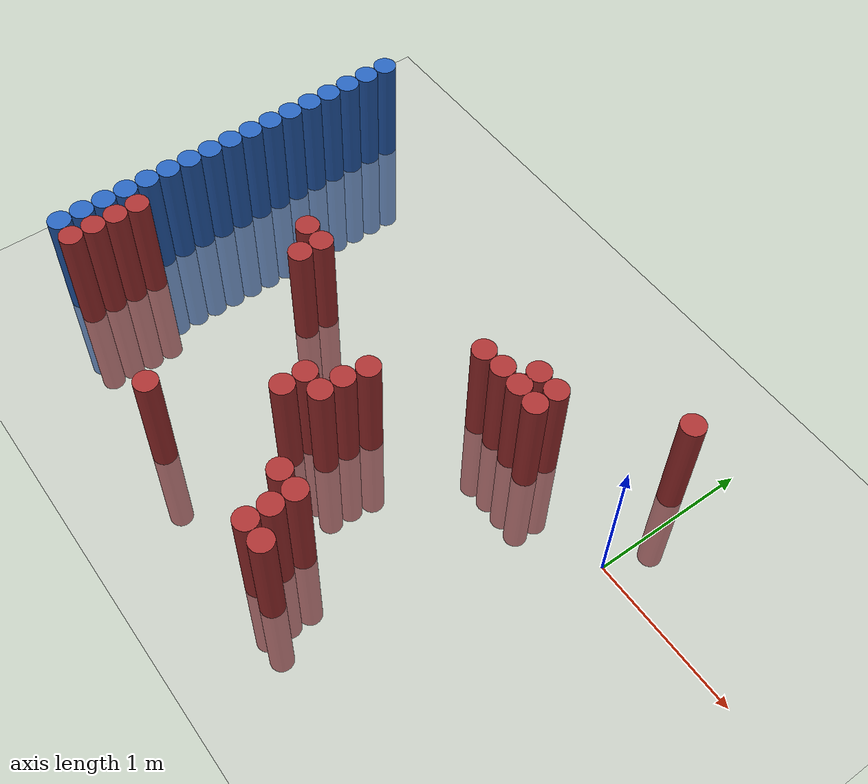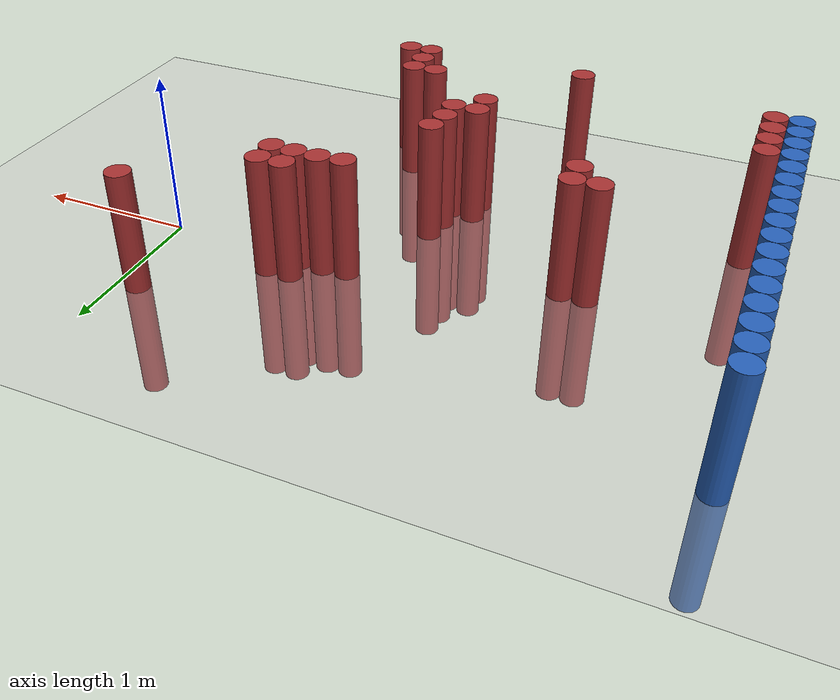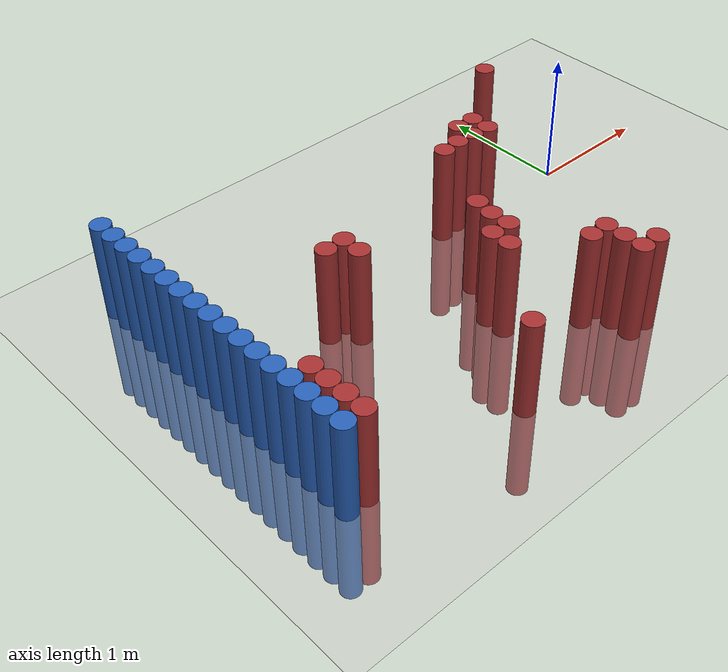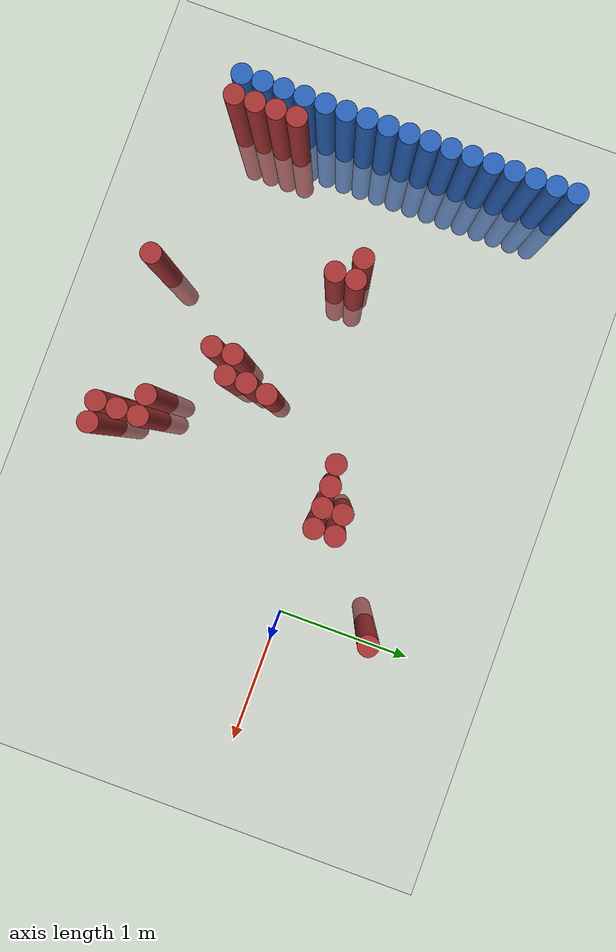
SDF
<sdf version="1.7">
 <world name="default">
  <model name="ground_plane">
   <static>1</static>
   <link name="link">
    <collision name="collision">
     <geometry><plane><normal>0 0 1</normal><size>100 100</size></plane></geometry>
     <surface><friction><ode><mu>100</mu><mu2>50</mu2></ode></friction></surface>
    </collision>
    <visual name="visual">
     <cast_shadows>0</cast_shadows>
     <geometry><plane><normal>0 0 1</normal><size>100 100</size></plane></geometry>
     <material>
      <script><uri>file://media/materials/scripts/gazebo.material</uri><name>Gazebo/Grey</name></script>
     </material>
    </visual>
   </link>
  </model>
  <model name="unit_cylinder_95">
   <static>1</static>
   <pose>-3.425 -1.475 0 0 -0 0</pose>
   <link name="link">
    <inertial>
     <mass>1</mass>
     <inertia><ixx>0.145833</ixx><ixy>0</ixy><ixz>0</ixz><iyy>0.145833</iyy><iyz>0</iyz><izz>0.125</izz></inertia>
    </inertial>
    <collision name="collision">
     <geometry><cylinder><radius>0.075</radius><length>1.5</length></cylinder></geometry>
    </collision>
    <visual name="visual">
     <geometry><cylinder><radius>0.075</radius><length>1.5</length></cylinder></geometry>
     <material><ambient>0.152 0.379 0.72 1</ambient><diffuse>0.152 0.379 0.72 1</diffuse></material>
     <material>
      <script><name>Gazebo/Grey</name><uri>file://media/materials/scripts/gazebo.material</uri></script>
     </material>
    </visual>
   </link>
  </model>
  <model name="unit_cylinder_97">
   <static>1</static>
   <pose>-3.425 -1.325 0 0 -0 0</pose>
   <link name="link">
    <inertial>
     <mass>1</mass>
     <inertia><ixx>0.145833</ixx><ixy>0</ixy><ixz>0</ixz><iyy>0.145833</iyy><iyz>0</iyz><izz>0.125</izz></inertia>
    </inertial>
    <collision name="collision">
     <geometry><cylinder><radius>0.075</radius><length>1.5</length></cylinder></geometry>
    </collision>
    <visual name="visual">
     <geometry><cylinder><radius>0.075</radius><length>1.5</length></cylinder></geometry>
     <material><ambient>0.152 0.379 0.72 1</ambient><diffuse>0.152 0.379 0.72 1</diffuse></material>
     <material>
      <script><name>Gazebo/Grey</name><uri>file://media/materials/scripts/gazebo.material</uri></script>
     </material>
    </visual>
   </link>
  </model>
  <model name="unit_cylinder_99">
   <static>1</static>
   <pose>-3.425 -1.175 0 0 -0 0</pose>
   <link name="link">
    <inertial>
     <mass>1</mass>
     <inertia><ixx>0.145833</ixx><ixy>0</ixy><ixz>0</ixz><iyy>0.145833</iyy><iyz>0</iyz><izz>0.125</izz></inertia>
    </inertial>
    <collision name="collision">
     <geometry><cylinder><radius>0.075</radius><length>1.5</length></cylinder></geometry>
    </collision>
    <visual name="visual">
     <geometry><cylinder><radius>0.075</radius><length>1.5</length></cylinder></geometry>
     <material><ambient>0.152 0.379 0.72 1</ambient><diffuse>0.152 0.379 0.72 1</diffuse></material>
     <material>
      <script><name>Gazebo/Grey</name><uri>file://media/materials/scripts/gazebo.material</uri></script>
     </material>
    </visual>
   </link>
  </model>
  <model name="unit_cylinder_101">
   <static>1</static>
   <pose>-3.425 -1.025 0 0 -0 0</pose>
   <link name="link">
    <inertial>
     <mass>1</mass>
     <inertia><ixx>0.145833</ixx><ixy>0</ixy><ixz>0</ixz><iyy>0.145833</iyy><iyz>0</iyz><izz>0.125</izz></inertia>
    </inertial>
    <collision name="collision">
     <geometry><cylinder><radius>0.075</radius><length>1.5</length></cylinder></geometry>
    </collision>
    <visual name="visual">
     <geometry><cylinder><radius>0.075</radius><length>1.5</length></cylinder></geometry>
     <material><ambient>0.152 0.379 0.72 1</ambient><diffuse>0.152 0.379 0.72 1</diffuse></material>
     <material>
      <script><name>Gazebo/Grey</name><uri>file://media/materials/scripts/gazebo.material</uri></script>
     </material>
    </visual>
   </link>
  </model>
  <model name="unit_cylinder_103">
   <static>1</static>
   <pose>-3.425 -0.875 0 0 -0 0</pose>
   <link name="link">
    <inertial>
     <mass>1</mass>
     <inertia><ixx>0.145833</ixx><ixy>0</ixy><ixz>0</ixz><iyy>0.145833</iyy><iyz>0</iyz><izz>0.125</izz></inertia>
    </inertial>
    <collision name="collision">
     <geometry><cylinder><radius>0.075</radius><length>1.5</length></cylinder></geometry>
    </collision>
    <visual name="visual">
     <geometry><cylinder><radius>0.075</radius><length>1.5</length></cylinder></geometry>
     <material><ambient>0.152 0.379 0.72 1</ambient><diffuse>0.152 0.379 0.72 1</diffuse></material>
     <material>
      <script><name>Gazebo/Grey</name><uri>file://media/materials/scripts/gazebo.material</uri></script>
     </material>
    </visual>
   </link>
  </model>
  <model name="unit_cylinder_105">
   <static>1</static>
   <pose>-3.425 -0.725 0 0 -0 0</pose>
   <link name="link">
    <inertial>
     <mass>1</mass>
     <inertia><ixx>0.145833</ixx><ixy>0</ixy><ixz>0</ixz><iyy>0.145833</iyy><iyz>0</iyz><izz>0.125</izz></inertia>
    </inertial>
    <collision name="collision">
     <geometry><cylinder><radius>0.075</radius><length>1.5</length></cylinder></geometry>
    </collision>
    <visual name="visual">
     <geometry><cylinder><radius>0.075</radius><length>1.5</length></cylinder></geometry>
     <material><ambient>0.152 0.379 0.72 1</ambient><diffuse>0.152 0.379 0.72 1</diffuse></material>
     <material>
      <script><name>Gazebo/Grey</name><uri>file://media/materials/scripts/gazebo.material</uri></script>
     </material>
    </visual>
   </link>
  </model>
  <model name="unit_cylinder_107">
   <static>1</static>
   <pose>-3.425 -0.575 0 0 -0 0</pose>
   <link name="link">
    <inertial>
     <mass>1</mass>
     <inertia><ixx>0.145833</ixx><ixy>0</ixy><ixz>0</ixz><iyy>0.145833</iyy><iyz>0</iyz><izz>0.125</izz></inertia>
    </inertial>
    <collision name="collision">
     <geometry><cylinder><radius>0.075</radius><length>1.5</length></cylinder></geometry>
    </collision>
    <visual name="visual">
     <geometry><cylinder><radius>0.075</radius><length>1.5</length></cylinder></geometry>
     <material><ambient>0.152 0.379 0.72 1</ambient><diffuse>0.152 0.379 0.72 1</diffuse></material>
     <material>
      <script><name>Gazebo/Grey</name><uri>file://media/materials/scripts/gazebo.material</uri></script>
     </material>
    </visual>
   </link>
  </model>
  <model name="unit_cylinder_109">
   <static>1</static>
   <pose>-3.425 -0.425 0 0 -0 0</pose>
   <link name="link">
    <inertial>
     <mass>1</mass>
     <inertia><ixx>0.145833</ixx><ixy>0</ixy><ixz>0</ixz><iyy>0.145833</iyy><iyz>0</iyz><izz>0.125</izz></inertia>
    </inertial>
    <collision name="collision">
     <geometry><cylinder><radius>0.075</radius><length>1.5</length></cylinder></geometry>
    </collision>
    <visual name="visual">
     <geometry><cylinder><radius>0.075</radius><length>1.5</length></cylinder></geometry>
     <material><ambient>0.152 0.379 0.72 1</ambient><diffuse>0.152 0.379 0.72 1</diffuse></material>
     <material>
      <script><name>Gazebo/Grey</name><uri>file://media/materials/scripts/gazebo.material</uri></script>
     </material>
    </visual>
   </link>
  </model>
  <model name="unit_cylinder_111">
   <static>1</static>
   <pose>-3.425 -0.275 0 0 -0 0</pose>
   <link name="link">
    <inertial>
     <mass>1</mass>
     <inertia><ixx>0.145833</ixx><ixy>0</ixy><ixz>0</ixz><iyy>0.145833</iyy><iyz>0</iyz><izz>0.125</izz></inertia>
    </inertial>
    <collision name="collision">
     <geometry><cylinder><radius>0.075</radius><length>1.5</length></cylinder></geometry>
    </collision>
    <visual name="visual">
     <geometry><cylinder><radius>0.075</radius><length>1.5</length></cylinder></geometry>
     <material><ambient>0.152 0.379 0.72 1</ambient><diffuse>0.152 0.379 0.72 1</diffuse></material>
     <material>
      <script><name>Gazebo/Grey</name><uri>file://media/materials/scripts/gazebo.material</uri></script>
     </material>
    </visual>
   </link>
  </model>
  <model name="unit_cylinder_113">
   <static>1</static>
   <pose>-3.425 -0.125 0 0 -0 0</pose>
   <link name="link">
    <inertial>
     <mass>1</mass>
     <inertia><ixx>0.145833</ixx><ixy>0</ixy><ixz>0</ixz><iyy>0.145833</iyy><iyz>0</iyz><izz>0.125</izz></inertia>
    </inertial>
    <collision name="collision">
     <geometry><cylinder><radius>0.075</radius><length>1.5</length></cylinder></geometry>
    </collision>
    <visual name="visual">
     <geometry><cylinder><radius>0.075</radius><length>1.5</length></cylinder></geometry>
     <material><ambient>0.152 0.379 0.72 1</ambient><diffuse>0.152 0.379 0.72 1</diffuse></material>
     <material>
      <script><name>Gazebo/Grey</name><uri>file://media/materials/scripts/gazebo.material</uri></script>
     </material>
    </visual>
   </link>
  </model>
  <model name="unit_cylinder_115">
   <static>1</static>
   <pose>-3.425 0.025 0 0 -0 0</pose>
   <link name="link">
    <inertial>
     <mass>1</mass>
     <inertia><ixx>0.145833</ixx><ixy>0</ixy><ixz>0</ixz><iyy>0.145833</iyy><iyz>0</iyz><izz>0.125</izz></inertia>
    </inertial>
    <collision name="collision">
     <geometry><cylinder><radius>0.075</radius><length>1.5</length></cylinder></geometry>
    </collision>
    <visual name="visual">
     <geometry><cylinder><radius>0.075</radius><length>1.5</length></cylinder></geometry>
     <material><ambient>0.152 0.379 0.72 1</ambient><diffuse>0.152 0.379 0.72 1</diffuse></material>
     <material>
      <script><name>Gazebo/Grey</name><uri>file://media/materials/scripts/gazebo.material</uri></script>
     </material>
    </visual>
   </link>
  </model>
  <model name="unit_cylinder_117">
   <static>1</static>
   <pose>-3.425 0.175 0 0 -0 0</pose>
   <link name="link">
    <inertial>
     <mass>1</mass>
     <inertia><ixx>0.145833</ixx><ixy>0</ixy><ixz>0</ixz><iyy>0.145833</iyy><iyz>0</iyz><izz>0.125</izz></inertia>
    </inertial>
    <collision name="collision">
     <geometry><cylinder><radius>0.075</radius><length>1.5</length></cylinder></geometry>
    </collision>
    <visual name="visual">
     <geometry><cylinder><radius>0.075</radius><length>1.5</length></cylinder></geometry>
     <material><ambient>0.152 0.379 0.72 1</ambient><diffuse>0.152 0.379 0.72 1</diffuse></material>
     <material>
      <script><name>Gazebo/Grey</name><uri>file://media/materials/scripts/gazebo.material</uri></script>
     </material>
    </visual>
   </link>
  </model>
  <model name="unit_cylinder_119">
   <static>1</static>
   <pose>-3.425 0.325 0 0 -0 0</pose>
   <link name="link">
    <inertial>
     <mass>1</mass>
     <inertia><ixx>0.145833</ixx><ixy>0</ixy><ixz>0</ixz><iyy>0.145833</iyy><iyz>0</iyz><izz>0.125</izz></inertia>
    </inertial>
    <collision name="collision">
     <geometry><cylinder><radius>0.075</radius><length>1.5</length></cylinder></geometry>
    </collision>
    <visual name="visual">
     <geometry><cylinder><radius>0.075</radius><length>1.5</length></cylinder></geometry>
     <material><ambient>0.152 0.379 0.72 1</ambient><diffuse>0.152 0.379 0.72 1</diffuse></material>
     <material>
      <script><name>Gazebo/Grey</name><uri>file://media/materials/scripts/gazebo.material</uri></script>
     </material>
    </visual>
   </link>
  </model>
  <model name="unit_cylinder_121">
   <static>1</static>
   <pose>-3.425 0.475 0 0 -0 0</pose>
   <link name="link">
    <inertial>
     <mass>1</mass>
     <inertia><ixx>0.145833</ixx><ixy>0</ixy><ixz>0</ixz><iyy>0.145833</iyy><iyz>0</iyz><izz>0.125</izz></inertia>
    </inertial>
    <collision name="collision">
     <geometry><cylinder><radius>0.075</radius><length>1.5</length></cylinder></geometry>
    </collision>
    <visual name="visual">
     <geometry><cylinder><radius>0.075</radius><length>1.5</length></cylinder></geometry>
     <material><ambient>0.152 0.379 0.72 1</ambient><diffuse>0.152 0.379 0.72 1</diffuse></material>
     <material>
      <script><name>Gazebo/Grey</name><uri>file://media/materials/scripts/gazebo.material</uri></script>
     </material>
    </visual>
   </link>
  </model>
  <model name="unit_cylinder_123">
   <static>1</static>
   <pose>-3.425 0.625 0 0 -0 0</pose>
   <link name="link">
    <inertial>
     <mass>1</mass>
     <inertia><ixx>0.145833</ixx><ixy>0</ixy><ixz>0</ixz><iyy>0.145833</iyy><iyz>0</iyz><izz>0.125</izz></inertia>
    </inertial>
    <collision name="collision">
     <geometry><cylinder><radius>0.075</radius><length>1.5</length></cylinder></geometry>
    </collision>
    <visual name="visual">
     <geometry><cylinder><radius>0.075</radius><length>1.5</length></cylinder></geometry>
     <material><ambient>0.152 0.379 0.72 1</ambient><diffuse>0.152 0.379 0.72 1</diffuse></material>
     <material>
      <script><name>Gazebo/Grey</name><uri>file://media/materials/scripts/gazebo.material</uri></script>
     </material>
    </visual>
   </link>
  </model>
  <model name="unit_cylinder_125">
   <static>1</static>
   <pose>-3.425 0.775 0 0 -0 0</pose>
   <link name="link">
    <inertial>
     <mass>1</mass>
     <inertia><ixx>0.145833</ixx><ixy>0</ixy><ixz>0</ixz><iyy>0.145833</iyy><iyz>0</iyz><izz>0.125</izz></inertia>
    </inertial>
    <collision name="collision">
     <geometry><cylinder><radius>0.075</radius><length>1.5</length></cylinder></geometry>
    </collision>
    <visual name="visual">
     <geometry><cylinder><radius>0.075</radius><length>1.5</length></cylinder></geometry>
     <material><ambient>0.152 0.379 0.72 1</ambient><diffuse>0.152 0.379 0.72 1</diffuse></material>
     <material>
      <script><name>Gazebo/Grey</name><uri>file://media/materials/scripts/gazebo.material</uri></script>
     </material>
    </visual>
   </link>
  </model>
  <model name="unit_cylinder_127">
   <static>1</static>
   <pose>-3.425 0.925 0 0 -0 0</pose>
   <link name="link">
    <inertial>
     <mass>1</mass>
     <inertia><ixx>0.145833</ixx><ixy>0</ixy><ixz>0</ixz><iyy>0.145833</iyy><iyz>0</iyz><izz>0.125</izz></inertia>
    </inertial>
    <collision name="collision">
     <geometry><cylinder><radius>0.075</radius><length>1.5</length></cylinder></geometry>
    </collision>
    <visual name="visual">
     <geometry><cylinder><radius>0.075</radius><length>1.5</length></cylinder></geometry>
     <material><ambient>0.152 0.379 0.72 1</ambient><diffuse>0.152 0.379 0.72 1</diffuse></material>
     <material>
      <script><name>Gazebo/Grey</name><uri>file://media/materials/scripts/gazebo.material</uri></script>
     </material>
    </visual>
   </link>
  </model>
  <model name="unit_cylinder_211">
   <static>1</static>
   <pose>-3.425 -1.475 0 0 -0 0</pose>
   <link name="link">
    <inertial>
     <mass>1</mass>
     <inertia><ixx>0.145833</ixx><ixy>0</ixy><ixz>0</ixz><iyy>0.145833</iyy><iyz>0</iyz><izz>0.125</izz></inertia>
    </inertial>
    <collision name="collision">
     <geometry><cylinder><radius>0.075</radius><length>1.5</length></cylinder></geometry>
    </collision>
    <visual name="visual">
     <geometry><cylinder><radius>0.075</radius><length>1.5</length></cylinder></geometry>
     <material><ambient>0.152 0.379 0.72 1</ambient><diffuse>0.152 0.379 0.72 1</diffuse></material>
     <material>
      <script><name>Gazebo/Grey</name><uri>file://media/materials/scripts/gazebo.material</uri></script>
     </material>
    </visual>
   </link>
  </model>
  <model name="unit_cylinder_212">
   <static>1</static>
   <pose>-3.425 -1.325 0 0 -0 0</pose>
   <link name="link">
    <inertial>
     <mass>1</mass>
     <inertia><ixx>0.145833</ixx><ixy>0</ixy><ixz>0</ixz><iyy>0.145833</iyy><iyz>0</iyz><izz>0.125</izz></inertia>
    </inertial>
    <collision name="collision">
     <geometry><cylinder><radius>0.075</radius><length>1.5</length></cylinder></geometry>
    </collision>
    <visual name="visual">
     <geometry><cylinder><radius>0.075</radius><length>1.5</length></cylinder></geometry>
     <material><ambient>0.152 0.379 0.72 1</ambient><diffuse>0.152 0.379 0.72 1</diffuse></material>
     <material>
      <script><name>Gazebo/Grey</name><uri>file://media/materials/scripts/gazebo.material</uri></script>
     </material>
    </visual>
   </link>
  </model>
  <model name="unit_cylinder_213">
   <static>1</static>
   <pose>-3.425 -1.175 0 0 -0 0</pose>
   <link name="link">
    <inertial>
     <mass>1</mass>
     <inertia><ixx>0.145833</ixx><ixy>0</ixy><ixz>0</ixz><iyy>0.145833</iyy><iyz>0</iyz><izz>0.125</izz></inertia>
    </inertial>
    <collision name="collision">
     <geometry><cylinder><radius>0.075</radius><length>1.5</length></cylinder></geometry>
    </collision>
    <visual name="visual">
     <geometry><cylinder><radius>0.075</radius><length>1.5</length></cylinder></geometry>
     <material><ambient>0.152 0.379 0.72 1</ambient><diffuse>0.152 0.379 0.72 1</diffuse></material>
     <material>
      <script><name>Gazebo/Grey</name><uri>file://media/materials/scripts/gazebo.material</uri></script>
     </material>
    </visual>
   </link>
  </model>
  <model name="unit_cylinder_214">
   <static>1</static>
   <pose>-3.425 -1.025 0 0 -0 0</pose>
   <link name="link">
    <inertial>
     <mass>1</mass>
     <inertia><ixx>0.145833</ixx><ixy>0</ixy><ixz>0</ixz><iyy>0.145833</iyy><iyz>0</iyz><izz>0.125</izz></inertia>
    </inertial>
    <collision name="collision">
     <geometry><cylinder><radius>0.075</radius><length>1.5</length></cylinder></geometry>
    </collision>
    <visual name="visual">
     <geometry><cylinder><radius>0.075</radius><length>1.5</length></cylinder></geometry>
     <material><ambient>0.152 0.379 0.72 1</ambient><diffuse>0.152 0.379 0.72 1</diffuse></material>
     <material>
      <script><name>Gazebo/Grey</name><uri>file://media/materials/scripts/gazebo.material</uri></script>
     </material>
    </visual>
   </link>
  </model>
  <model name="unit_cylinder_215">
   <static>1</static>
   <pose>-3.425 -0.875 0 0 -0 0</pose>
   <link name="link">
    <inertial>
     <mass>1</mass>
     <inertia><ixx>0.145833</ixx><ixy>0</ixy><ixz>0</ixz><iyy>0.145833</iyy><iyz>0</iyz><izz>0.125</izz></inertia>
    </inertial>
    <collision name="collision">
     <geometry><cylinder><radius>0.075</radius><length>1.5</length></cylinder></geometry>
    </collision>
    <visual name="visual">
     <geometry><cylinder><radius>0.075</radius><length>1.5</length></cylinder></geometry>
     <material><ambient>0.152 0.379 0.72 1</ambient><diffuse>0.152 0.379 0.72 1</diffuse></material>
     <material>
      <script><name>Gazebo/Grey</name><uri>file://media/materials/scripts/gazebo.material</uri></script>
     </material>
    </visual>
   </link>
  </model>
  <model name="unit_cylinder_216">
   <static>1</static>
   <pose>-3.425 -0.725 0 0 -0 0</pose>
   <link name="link">
    <inertial>
     <mass>1</mass>
     <inertia><ixx>0.145833</ixx><ixy>0</ixy><ixz>0</ixz><iyy>0.145833</iyy><iyz>0</iyz><izz>0.125</izz></inertia>
    </inertial>
    <collision name="collision">
     <geometry><cylinder><radius>0.075</radius><length>1.5</length></cylinder></geometry>
    </collision>
    <visual name="visual">
     <geometry><cylinder><radius>0.075</radius><length>1.5</length></cylinder></geometry>
     <material><ambient>0.152 0.379 0.72 1</ambient><diffuse>0.152 0.379 0.72 1</diffuse></material>
     <material>
      <script><name>Gazebo/Grey</name><uri>file://media/materials/scripts/gazebo.material</uri></script>
     </material>
    </visual>
   </link>
  </model>
  <model name="unit_cylinder_217">
   <static>1</static>
   <pose>-3.425 -0.575 0 0 -0 0</pose>
   <link name="link">
    <inertial>
     <mass>1</mass>
     <inertia><ixx>0.145833</ixx><ixy>0</ixy><ixz>0</ixz><iyy>0.145833</iyy><iyz>0</iyz><izz>0.125</izz></inertia>
    </inertial>
    <collision name="collision">
     <geometry><cylinder><radius>0.075</radius><length>1.5</length></cylinder></geometry>
    </collision>
    <visual name="visual">
     <geometry><cylinder><radius>0.075</radius><length>1.5</length></cylinder></geometry>
     <material><ambient>0.152 0.379 0.72 1</ambient><diffuse>0.152 0.379 0.72 1</diffuse></material>
     <material>
      <script><name>Gazebo/Grey</name><uri>file://media/materials/scripts/gazebo.material</uri></script>
     </material>
    </visual>
   </link>
  </model>
  <model name="unit_cylinder_218">
   <static>1</static>
   <pose>-3.425 -0.425 0 0 -0 0</pose>
   <link name="link">
    <inertial>
     <mass>1</mass>
     <inertia><ixx>0.145833</ixx><ixy>0</ixy><ixz>0</ixz><iyy>0.145833</iyy><iyz>0</iyz><izz>0.125</izz></inertia>
    </inertial>
    <collision name="collision">
     <geometry><cylinder><radius>0.075</radius><length>1.5</length></cylinder></geometry>
    </collision>
    <visual name="visual">
     <geometry><cylinder><radius>0.075</radius><length>1.5</length></cylinder></geometry>
     <material><ambient>0.152 0.379 0.72 1</ambient><diffuse>0.152 0.379 0.72 1</diffuse></material>
     <material>
      <script><name>Gazebo/Grey</name><uri>file://media/materials/scripts/gazebo.material</uri></script>
     </material>
    </visual>
   </link>
  </model>
  <model name="unit_cylinder_219">
   <static>1</static>
   <pose>-3.425 -0.275 0 0 -0 0</pose>
   <link name="link">
    <inertial>
     <mass>1</mass>
     <inertia><ixx>0.145833</ixx><ixy>0</ixy><ixz>0</ixz><iyy>0.145833</iyy><iyz>0</iyz><izz>0.125</izz></inertia>
    </inertial>
    <collision name="collision">
     <geometry><cylinder><radius>0.075</radius><length>1.5</length></cylinder></geometry>
    </collision>
    <visual name="visual">
     <geometry><cylinder><radius>0.075</radius><length>1.5</length></cylinder></geometry>
     <material><ambient>0.152 0.379 0.72 1</ambient><diffuse>0.152 0.379 0.72 1</diffuse></material>
     <material>
      <script><name>Gazebo/Grey</name><uri>file://media/materials/scripts/gazebo.material</uri></script>
     </material>
    </visual>
   </link>
  </model>
  <model name="unit_cylinder_220">
   <static>1</static>
   <pose>-3.425 -0.125 0 0 -0 0</pose>
   <link name="link">
    <inertial>
     <mass>1</mass>
     <inertia><ixx>0.145833</ixx><ixy>0</ixy><ixz>0</ixz><iyy>0.145833</iyy><iyz>0</iyz><izz>0.125</izz></inertia>
    </inertial>
    <collision name="collision">
     <geometry><cylinder><radius>0.075</radius><length>1.5</length></cylinder></geometry>
    </collision>
    <visual name="visual">
     <geometry><cylinder><radius>0.075</radius><length>1.5</length></cylinder></geometry>
     <material><ambient>0.152 0.379 0.72 1</ambient><diffuse>0.152 0.379 0.72 1</diffuse></material>
     <material>
      <script><name>Gazebo/Grey</name><uri>file://media/materials/scripts/gazebo.material</uri></script>
     </material>
    </visual>
   </link>
  </model>
  <model name="unit_cylinder_221">
   <static>1</static>
   <pose>-3.425 0.025 0 0 -0 0</pose>
   <link name="link">
    <inertial>
     <mass>1</mass>
     <inertia><ixx>0.145833</ixx><ixy>0</ixy><ixz>0</ixz><iyy>0.145833</iyy><iyz>0</iyz><izz>0.125</izz></inertia>
    </inertial>
    <collision name="collision">
     <geometry><cylinder><radius>0.075</radius><length>1.5</length></cylinder></geometry>
    </collision>
    <visual name="visual">
     <geometry><cylinder><radius>0.075</radius><length>1.5</length></cylinder></geometry>
     <material><ambient>0.152 0.379 0.72 1</ambient><diffuse>0.152 0.379 0.72 1</diffuse></material>
     <material>
      <script><name>Gazebo/Grey</name><uri>file://media/materials/scripts/gazebo.material</uri></script>
     </material>
    </visual>
   </link>
  </model>
  <model name="unit_cylinder_222">
   <static>1</static>
   <pose>-3.425 0.175 0 0 -0 0</pose>
   <link name="link">
    <inertial>
     <mass>1</mass>
     <inertia><ixx>0.145833</ixx><ixy>0</ixy><ixz>0</ixz><iyy>0.145833</iyy><iyz>0</iyz><izz>0.125</izz></inertia>
    </inertial>
    <collision name="collision">
     <geometry><cylinder><radius>0.075</radius><length>1.5</length></cylinder></geometry>
    </collision>
    <visual name="visual">
     <geometry><cylinder><radius>0.075</radius><length>1.5</length></cylinder></geometry>
     <material><ambient>0.152 0.379 0.72 1</ambient><diffuse>0.152 0.379 0.72 1</diffuse></material>
     <material>
      <script><name>Gazebo/Grey</name><uri>file://media/materials/scripts/gazebo.material</uri></script>
     </material>
    </visual>
   </link>
  </model>
  <model name="unit_cylinder_223">
   <static>1</static>
   <pose>-3.425 0.325 0 0 -0 0</pose>
   <link name="link">
    <inertial>
     <mass>1</mass>
     <inertia><ixx>0.145833</ixx><ixy>0</ixy><ixz>0</ixz><iyy>0.145833</iyy><iyz>0</iyz><izz>0.125</izz></inertia>
    </inertial>
    <collision name="collision">
     <geometry><cylinder><radius>0.075</radius><length>1.5</length></cylinder></geometry>
    </collision>
    <visual name="visual">
     <geometry><cylinder><radius>0.075</radius><length>1.5</length></cylinder></geometry>
     <material><ambient>0.152 0.379 0.72 1</ambient><diffuse>0.152 0.379 0.72 1</diffuse></material>
     <material>
      <script><name>Gazebo/Grey</name><uri>file://media/materials/scripts/gazebo.material</uri></script>
     </material>
    </visual>
   </link>
  </model>
  <model name="unit_cylinder_224">
   <static>1</static>
   <pose>-3.425 0.475 0 0 -0 0</pose>
   <link name="link">
    <inertial>
     <mass>1</mass>
     <inertia><ixx>0.145833</ixx><ixy>0</ixy><ixz>0</ixz><iyy>0.145833</iyy><iyz>0</iyz><izz>0.125</izz></inertia>
    </inertial>
    <collision name="collision">
     <geometry><cylinder><radius>0.075</radius><length>1.5</length></cylinder></geometry>
    </collision>
    <visual name="visual">
     <geometry><cylinder><radius>0.075</radius><length>1.5</length></cylinder></geometry>
     <material><ambient>0.152 0.379 0.72 1</ambient><diffuse>0.152 0.379 0.72 1</diffuse></material>
     <material>
      <script><name>Gazebo/Grey</name><uri>file://media/materials/scripts/gazebo.material</uri></script>
     </material>
    </visual>
   </link>
  </model>
  <model name="unit_cylinder_225">
   <static>1</static>
   <pose>-3.425 0.625 0 0 -0 0</pose>
   <link name="link">
    <inertial>
     <mass>1</mass>
     <inertia><ixx>0.145833</ixx><ixy>0</ixy><ixz>0</ixz><iyy>0.145833</iyy><iyz>0</iyz><izz>0.125</izz></inertia>
    </inertial>
    <collision name="collision">
     <geometry><cylinder><radius>0.075</radius><length>1.5</length></cylinder></geometry>
    </collision>
    <visual name="visual">
     <geometry><cylinder><radius>0.075</radius><length>1.5</length></cylinder></geometry>
     <material><ambient>0.152 0.379 0.72 1</ambient><diffuse>0.152 0.379 0.72 1</diffuse></material>
     <material>
      <script><name>Gazebo/Grey</name><uri>file://media/materials/scripts/gazebo.material</uri></script>
     </material>
    </visual>
   </link>
  </model>
  <model name="unit_cylinder_226">
   <static>1</static>
   <pose>-3.425 0.775 0 0 -0 0</pose>
   <link name="link">
    <inertial>
     <mass>1</mass>
     <inertia><ixx>0.145833</ixx><ixy>0</ixy><ixz>0</ixz><iyy>0.145833</iyy><iyz>0</iyz><izz>0.125</izz></inertia>
    </inertial>
    <collision name="collision">
     <geometry><cylinder><radius>0.075</radius><length>1.5</length></cylinder></geometry>
    </collision>
    <visual name="visual">
     <geometry><cylinder><radius>0.075</radius><length>1.5</length></cylinder></geometry>
     <material><ambient>0.152 0.379 0.72 1</ambient><diffuse>0.152 0.379 0.72 1</diffuse></material>
     <material>
      <script><name>Gazebo/Grey</name><uri>file://media/materials/scripts/gazebo.material</uri></script>
     </material>
    </visual>
   </link>
  </model>
  <model name="unit_cylinder_260">
   <static>1</static>
   <pose>-3.275 -1.475 0 0 -0 0</pose>
   <link name="link">
    <inertial>
     <mass>1</mass>
     <inertia><ixx>0.145833</ixx><ixy>0</ixy><ixz>0</ixz><iyy>0.145833</iyy><iyz>0</iyz><izz>0.125</izz></inertia>
    </inertial>
    <collision name="collision">
     <geometry><cylinder><radius>0.075</radius><length>1.5</length></cylinder></geometry>
    </collision>
    <visual name="visual">
     <geometry><cylinder><radius>0.075</radius><length>1.5</length></cylinder></geometry>
     <material><ambient>0.648 0.192 0.192 1</ambient><diffuse>0.648 0.192 0.192 1</diffuse></material>
     <material>
      <script><name>Gazebo/Grey</name><uri>file://media/materials/scripts/gazebo.material</uri></script>
     </material>
    </visual>
   </link>
  </model>
  <model name="unit_cylinder_261">
   <static>1</static>
   <pose>-3.275 -1.325 0 0 -0 0</pose>
   <link name="link">
    <inertial>
     <mass>1</mass>
     <inertia><ixx>0.145833</ixx><ixy>0</ixy><ixz>0</ixz><iyy>0.145833</iyy><iyz>0</iyz><izz>0.125</izz></inertia>
    </inertial>
    <collision name="collision">
     <geometry><cylinder><radius>0.075</radius><length>1.5</length></cylinder></geometry>
    </collision>
    <visual name="visual">
     <geometry><cylinder><radius>0.075</radius><length>1.5</length></cylinder></geometry>
     <material><ambient>0.648 0.192 0.192 1</ambient><diffuse>0.648 0.192 0.192 1</diffuse></material>
     <material>
      <script><name>Gazebo/Grey</name><uri>file://media/materials/scripts/gazebo.material</uri></script>
     </material>
    </visual>
   </link>
  </model>
  <model name="unit_cylinder_262">
   <static>1</static>
   <pose>-3.275 -1.175 0 0 -0 0</pose>
   <link name="link">
    <inertial>
     <mass>1</mass>
     <inertia><ixx>0.145833</ixx><ixy>0</ixy><ixz>0</ixz><iyy>0.145833</iyy><iyz>0</iyz><izz>0.125</izz></inertia>
    </inertial>
    <collision name="collision">
     <geometry><cylinder><radius>0.075</radius><length>1.5</length></cylinder></geometry>
    </collision>
    <visual name="visual">
     <geometry><cylinder><radius>0.075</radius><length>1.5</length></cylinder></geometry>
     <material><ambient>0.648 0.192 0.192 1</ambient><diffuse>0.648 0.192 0.192 1</diffuse></material>
     <material>
      <script><name>Gazebo/Grey</name><uri>file://media/materials/scripts/gazebo.material</uri></script>
     </material>
    </visual>
   </link>
  </model>
  <model name="unit_cylinder_263">
   <static>1</static>
   <pose>-3.275 -1.025 0 0 -0 0</pose>
   <link name="link">
    <inertial>
     <mass>1</mass>
     <inertia><ixx>0.145833</ixx><ixy>0</ixy><ixz>0</ixz><iyy>0.145833</iyy><iyz>0</iyz><izz>0.125</izz></inertia>
    </inertial>
    <collision name="collision">
     <geometry><cylinder><radius>0.075</radius><length>1.5</length></cylinder></geometry>
    </collision>
    <visual name="visual">
     <geometry><cylinder><radius>0.075</radius><length>1.5</length></cylinder></geometry>
     <material><ambient>0.648 0.192 0.192 1</ambient><diffuse>0.648 0.192 0.192 1</diffuse></material>
     <material>
      <script><name>Gazebo/Grey</name><uri>file://media/materials/scripts/gazebo.material</uri></script>
     </material>
    </visual>
   </link>
  </model>
  <model name="unit_cylinder_287">
   <static>1</static>
   <pose>-2.525 -0.275 0 0 -0 0</pose>
   <link name="link">
    <inertial>
     <mass>1</mass>
     <inertia><ixx>0.145833</ixx><ixy>0</ixy><ixz>0</ixz><iyy>0.145833</iyy><iyz>0</iyz><izz>0.125</izz></inertia>
    </inertial>
    <collision name="collision">
     <geometry><cylinder><radius>0.075</radius><length>1.5</length></cylinder></geometry>
    </collision>
    <visual name="visual">
     <geometry><cylinder><radius>0.075</radius><length>1.5</length></cylinder></geometry>
     <material><ambient>0.648 0.192 0.192 1</ambient><diffuse>0.648 0.192 0.192 1</diffuse></material>
     <material>
      <script><name>Gazebo/Grey</name><uri>file://media/materials/scripts/gazebo.material</uri></script>
     </material>
    </visual>
   </link>
  </model>
  <model name="unit_cylinder_292">
   <static>1</static>
   <pose>-2.375 -0.425 0 0 -0 0</pose>
   <link name="link">
    <inertial>
     <mass>1</mass>
     <inertia><ixx>0.145833</ixx><ixy>0</ixy><ixz>0</ixz><iyy>0.145833</iyy><iyz>0</iyz><izz>0.125</izz></inertia>
    </inertial>
    <collision name="collision">
     <geometry><cylinder><radius>0.075</radius><length>1.5</length></cylinder></geometry>
    </collision>
    <visual name="visual">
     <geometry><cylinder><radius>0.075</radius><length>1.5</length></cylinder></geometry>
     <material><ambient>0.648 0.192 0.192 1</ambient><diffuse>0.648 0.192 0.192 1</diffuse></material>
     <material>
      <script><name>Gazebo/Grey</name><uri>file://media/materials/scripts/gazebo.material</uri></script>
     </material>
    </visual>
   </link>
  </model>
  <model name="unit_cylinder_293">
   <static>1</static>
   <pose>-2.375 -0.275 0 0 -0 0</pose>
   <link name="link">
    <inertial>
     <mass>1</mass>
     <inertia><ixx>0.145833</ixx><ixy>0</ixy><ixz>0</ixz><iyy>0.145833</iyy><iyz>0</iyz><izz>0.125</izz></inertia>
    </inertial>
    <collision name="collision">
     <geometry><cylinder><radius>0.075</radius><length>1.5</length></cylinder></geometry>
    </collision>
    <visual name="visual">
     <geometry><cylinder><radius>0.075</radius><length>1.5</length></cylinder></geometry>
     <material><ambient>0.648 0.192 0.192 1</ambient><diffuse>0.648 0.192 0.192 1</diffuse></material>
     <material>
      <script><name>Gazebo/Grey</name><uri>file://media/materials/scripts/gazebo.material</uri></script>
     </material>
    </visual>
   </link>
  </model>
  <model name="unit_cylinder_300">
   <static>1</static>
   <pose>-2.075 -1.625 0 0 -0 0</pose>
   <link name="link">
    <inertial>
     <mass>1</mass>
     <inertia><ixx>0.145833</ixx><ixy>0</ixy><ixz>0</ixz><iyy>0.145833</iyy><iyz>0</iyz><izz>0.125</izz></inertia>
    </inertial>
    <collision name="collision">
     <geometry><cylinder><radius>0.075</radius><length>1.5</length></cylinder></geometry>
    </collision>
    <visual name="visual">
     <geometry><cylinder><radius>0.075</radius><length>1.5</length></cylinder></geometry>
     <material><ambient>0.648 0.192 0.192 1</ambient><diffuse>0.648 0.192 0.192 1</diffuse></material>
     <material>
      <script><name>Gazebo/Grey</name><uri>file://media/materials/scripts/gazebo.material</uri></script>
     </material>
    </visual>
   </link>
  </model>
  <model name="unit_cylinder_323">
   <static>1</static>
   <pose>-1.625 -1.025 0 0 -0 0</pose>
   <link name="link">
    <inertial>
     <mass>1</mass>
     <inertia><ixx>0.145833</ixx><ixy>0</ixy><ixz>0</ixz><iyy>0.145833</iyy><iyz>0</iyz><izz>0.125</izz></inertia>
    </inertial>
    <collision name="collision">
     <geometry><cylinder><radius>0.075</radius><length>1.5</length></cylinder></geometry>
    </collision>
    <visual name="visual">
     <geometry><cylinder><radius>0.075</radius><length>1.5</length></cylinder></geometry>
     <material><ambient>0.648 0.192 0.192 1</ambient><diffuse>0.648 0.192 0.192 1</diffuse></material>
     <material>
      <script><name>Gazebo/Grey</name><uri>file://media/materials/scripts/gazebo.material</uri></script>
     </material>
    </visual>
   </link>
  </model>
  <model name="unit_cylinder_324">
   <static>1</static>
   <pose>-1.625 -0.875 0 0 -0 0</pose>
   <link name="link">
    <inertial>
     <mass>1</mass>
     <inertia><ixx>0.145833</ixx><ixy>0</ixy><ixz>0</ixz><iyy>0.145833</iyy><iyz>0</iyz><izz>0.125</izz></inertia>
    </inertial>
    <collision name="collision">
     <geometry><cylinder><radius>0.075</radius><length>1.5</length></cylinder></geometry>
    </collision>
    <visual name="visual">
     <geometry><cylinder><radius>0.075</radius><length>1.5</length></cylinder></geometry>
     <material><ambient>0.648 0.192 0.192 1</ambient><diffuse>0.648 0.192 0.192 1</diffuse></material>
     <material>
      <script><name>Gazebo/Grey</name><uri>file://media/materials/scripts/gazebo.material</uri></script>
     </material>
    </visual>
   </link>
  </model>
  <model name="unit_cylinder_329">
   <static>1</static>
   <pose>-1.475 -0.875 0 0 -0 0</pose>
   <link name="link">
    <inertial>
     <mass>1</mass>
     <inertia><ixx>0.145833</ixx><ixy>0</ixy><ixz>0</ixz><iyy>0.145833</iyy><iyz>0</iyz><izz>0.125</izz></inertia>
    </inertial>
    <collision name="collision">
     <geometry><cylinder><radius>0.075</radius><length>1.5</length></cylinder></geometry>
    </collision>
    <visual name="visual">
     <geometry><cylinder><radius>0.075</radius><length>1.5</length></cylinder></geometry>
     <material><ambient>0.648 0.192 0.192 1</ambient><diffuse>0.648 0.192 0.192 1</diffuse></material>
     <material>
      <script><name>Gazebo/Grey</name><uri>file://media/materials/scripts/gazebo.material</uri></script>
     </material>
    </visual>
   </link>
  </model>
  <model name="unit_cylinder_330">
   <static>1</static>
   <pose>-1.475 -0.725 0 0 -0 0</pose>
   <link name="link">
    <inertial>
     <mass>1</mass>
     <inertia><ixx>0.145833</ixx><ixy>0</ixy><ixz>0</ixz><iyy>0.145833</iyy><iyz>0</iyz><izz>0.125</izz></inertia>
    </inertial>
    <collision name="collision">
     <geometry><cylinder><radius>0.075</radius><length>1.5</length></cylinder></geometry>
    </collision>
    <visual name="visual">
     <geometry><cylinder><radius>0.075</radius><length>1.5</length></cylinder></geometry>
     <material><ambient>0.648 0.192 0.192 1</ambient><diffuse>0.648 0.192 0.192 1</diffuse></material>
     <material>
      <script><name>Gazebo/Grey</name><uri>file://media/materials/scripts/gazebo.material</uri></script>
     </material>
    </visual>
   </link>
  </model>
  <model name="unit_cylinder_336">
   <static>1</static>
   <pose>-1.175 -1.325 0 0 -0 0</pose>
   <link name="link">
    <inertial>
     <mass>1</mass>
     <inertia><ixx>0.145833</ixx><ixy>0</ixy><ixz>0</ixz><iyy>0.145833</iyy><iyz>0</iyz><izz>0.125</izz></inertia>
    </inertial>
    <collision name="collision">
     <geometry><cylinder><radius>0.075</radius><length>1.5</length></cylinder></geometry>
    </collision>
    <visual name="visual">
     <geometry><cylinder><radius>0.075</radius><length>1.5</length></cylinder></geometry>
     <material><ambient>0.648 0.192 0.192 1</ambient><diffuse>0.648 0.192 0.192 1</diffuse></material>
     <material>
      <script><name>Gazebo/Grey</name><uri>file://media/materials/scripts/gazebo.material</uri></script>
     </material>
    </visual>
   </link>
  </model>
  <model name="unit_cylinder_337">
   <static>1</static>
   <pose>-1.025 -1.625 0 0 -0 0</pose>
   <link name="link">
    <inertial>
     <mass>1</mass>
     <inertia><ixx>0.145833</ixx><ixy>0</ixy><ixz>0</ixz><iyy>0.145833</iyy><iyz>0</iyz><izz>0.125</izz></inertia>
    </inertial>
    <collision name="collision">
     <geometry><cylinder><radius>0.075</radius><length>1.5</length></cylinder></geometry>
    </collision>
    <visual name="visual">
     <geometry><cylinder><radius>0.075</radius><length>1.5</length></cylinder></geometry>
     <material><ambient>0.648 0.192 0.192 1</ambient><diffuse>0.648 0.192 0.192 1</diffuse></material>
     <material>
      <script><name>Gazebo/Grey</name><uri>file://media/materials/scripts/gazebo.material</uri></script>
     </material>
    </visual>
   </link>
  </model>
  <model name="unit_cylinder_338">
   <static>1</static>
   <pose>-1.025 -1.475 0 0 -0 0</pose>
   <link name="link">
    <inertial>
     <mass>1</mass>
     <inertia><ixx>0.145833</ixx><ixy>0</ixy><ixz>0</ixz><iyy>0.145833</iyy><iyz>0</iyz><izz>0.125</izz></inertia>
    </inertial>
    <collision name="collision">
     <geometry><cylinder><radius>0.075</radius><length>1.5</length></cylinder></geometry>
    </collision>
    <visual name="visual">
     <geometry><cylinder><radius>0.075</radius><length>1.5</length></cylinder></geometry>
     <material><ambient>0.648 0.192 0.192 1</ambient><diffuse>0.648 0.192 0.192 1</diffuse></material>
     <material>
      <script><name>Gazebo/Grey</name><uri>file://media/materials/scripts/gazebo.material</uri></script>
     </material>
    </visual>
   </link>
  </model>
  <model name="unit_cylinder_339">
   <static>1</static>
   <pose>-1.025 -1.325 0 0 -0 0</pose>
   <link name="link">
    <inertial>
     <mass>1</mass>
     <inertia><ixx>0.145833</ixx><ixy>0</ixy><ixz>0</ixz><iyy>0.145833</iyy><iyz>0</iyz><izz>0.125</izz></inertia>
    </inertial>
    <collision name="collision">
     <geometry><cylinder><radius>0.075</radius><length>1.5</length></cylinder></geometry>
    </collision>
    <visual name="visual">
     <geometry><cylinder><radius>0.075</radius><length>1.5</length></cylinder></geometry>
     <material><ambient>0.648 0.192 0.192 1</ambient><diffuse>0.648 0.192 0.192 1</diffuse></material>
     <material>
      <script><name>Gazebo/Grey</name><uri>file://media/materials/scripts/gazebo.material</uri></script>
     </material>
    </visual>
   </link>
  </model>
  <model name="unit_cylinder_340">
   <static>1</static>
   <pose>-0.875 -1.625 0 0 -0 0</pose>
   <link name="link">
    <inertial>
     <mass>1</mass>
     <inertia><ixx>0.145833</ixx><ixy>0</ixy><ixz>0</ixz><iyy>0.145833</iyy><iyz>0</iyz><izz>0.125</izz></inertia>
    </inertial>
    <collision name="collision">
     <geometry><cylinder><radius>0.075</radius><length>1.5</length></cylinder></geometry>
    </collision>
    <visual name="visual">
     <geometry><cylinder><radius>0.075</radius><length>1.5</length></cylinder></geometry>
     <material><ambient>0.648 0.192 0.192 1</ambient><diffuse>0.648 0.192 0.192 1</diffuse></material>
     <material>
      <script><name>Gazebo/Grey</name><uri>file://media/materials/scripts/gazebo.material</uri></script>
     </material>
    </visual>
   </link>
  </model>
  <model name="unit_cylinder_341">
   <static>1</static>
   <pose>-0.875 0.175 0 0 -0 0</pose>
   <link name="link">
    <inertial>
     <mass>1</mass>
     <inertia><ixx>0.145833</ixx><ixy>0</ixy><ixz>0</ixz><iyy>0.145833</iyy><iyz>0</iyz><izz>0.125</izz></inertia>
    </inertial>
    <collision name="collision">
     <geometry><cylinder><radius>0.075</radius><length>1.5</length></cylinder></geometry>
    </collision>
    <visual name="visual">
     <geometry><cylinder><radius>0.075</radius><length>1.5</length></cylinder></geometry>
     <material><ambient>0.648 0.192 0.192 1</ambient><diffuse>0.648 0.192 0.192 1</diffuse></material>
     <material>
      <script><name>Gazebo/Grey</name><uri>file://media/materials/scripts/gazebo.material</uri></script>
     </material>
    </visual>
   </link>
  </model>
  <model name="unit_cylinder_344">
   <static>1</static>
   <pose>-0.725 0.025 0 0 -0 0</pose>
   <link name="link">
    <inertial>
     <mass>1</mass>
     <inertia><ixx>0.145833</ixx><ixy>0</ixy><ixz>0</ixz><iyy>0.145833</iyy><iyz>0</iyz><izz>0.125</izz></inertia>
    </inertial>
    <collision name="collision">
     <geometry><cylinder><radius>0.075</radius><length>1.5</length></cylinder></geometry>
    </collision>
    <visual name="visual">
     <geometry><cylinder><radius>0.075</radius><length>1.5</length></cylinder></geometry>
     <material><ambient>0.648 0.192 0.192 1</ambient><diffuse>0.648 0.192 0.192 1</diffuse></material>
     <material>
      <script><name>Gazebo/Grey</name><uri>file://media/materials/scripts/gazebo.material</uri></script>
     </material>
    </visual>
   </link>
  </model>
  <model name="unit_cylinder_345">
   <static>1</static>
   <pose>-0.725 0.175 0 0 -0 0</pose>
   <link name="link">
    <inertial>
     <mass>1</mass>
     <inertia><ixx>0.145833</ixx><ixy>0</ixy><ixz>0</ixz><iyy>0.145833</iyy><iyz>0</iyz><izz>0.125</izz></inertia>
    </inertial>
    <collision name="collision">
     <geometry><cylinder><radius>0.075</radius><length>1.5</length></cylinder></geometry>
    </collision>
    <visual name="visual">
     <geometry><cylinder><radius>0.075</radius><length>1.5</length></cylinder></geometry>
     <material><ambient>0.648 0.192 0.192 1</ambient><diffuse>0.648 0.192 0.192 1</diffuse></material>
     <material>
      <script><name>Gazebo/Grey</name><uri>file://media/materials/scripts/gazebo.material</uri></script>
     </material>
    </visual>
   </link>
  </model>
  <model name="unit_cylinder_356">
   <static>1</static>
   <pose>-0.125 0.625 0 0 -0 0</pose>
   <link name="link">
    <inertial>
     <mass>1</mass>
     <inertia><ixx>0.145833</ixx><ixy>0</ixy><ixz>0</ixz><iyy>0.145833</iyy><iyz>0</iyz><izz>0.125</izz></inertia>
    </inertial>
    <collision name="collision">
     <geometry><cylinder><radius>0.075</radius><length>1.5</length></cylinder></geometry>
    </collision>
    <visual name="visual">
     <geometry><cylinder><radius>0.075</radius><length>1.5</length></cylinder></geometry>
     <material><ambient>0.648 0.192 0.192 1</ambient><diffuse>0.648 0.192 0.192 1</diffuse></material>
     <material>
      <script><name>Gazebo/Grey</name><uri>file://media/materials/scripts/gazebo.material</uri></script>
     </material>
    </visual>
   </link>
  </model>
  <model name="unit_cylinder_362_clone">
   <static>1</static>
   <pose>-0.871233 0.032827 0 0 -0 0</pose>
   <link name="link">
    <inertial>
     <mass>1</mass>
     <inertia><ixx>0.145833</ixx><ixy>0</ixy><ixz>0</ixz><iyy>0.145833</iyy><iyz>0</iyz><izz>0.125</izz></inertia>
    </inertial>
    <collision name="collision">
     <geometry><cylinder><radius>0.075</radius><length>1.5</length></cylinder></geometry>
    </collision>
    <visual name="visual">
     <geometry><cylinder><radius>0.075</radius><length>1.5</length></cylinder></geometry>
     <material><ambient>0.648 0.192 0.192 1</ambient><diffuse>0.648 0.192 0.192 1</diffuse></material>
     <material>
      <script><name>Gazebo/Grey</name><uri>file://media/materials/scripts/gazebo.material</uri></script>
     </material>
    </visual>
   </link>
  </model>
  <model name="unit_cylinder_362_clone_0">
   <static>1</static>
   <pose>-1.02067 0.035114 0 0 -0 0</pose>
   <link name="link">
    <inertial>
     <mass>1</mass>
     <inertia><ixx>0.145833</ixx><ixy>0</ixy><ixz>0</ixz><iyy>0.145833</iyy><iyz>0</iyz><izz>0.125</izz></inertia>
    </inertial>
    <collision name="collision">
     <geometry><cylinder><radius>0.075</radius><length>1.5</length></cylinder></geometry>
    </collision>
    <visual name="visual">
     <geometry><cylinder><radius>0.075</radius><length>1.5</length></cylinder></geometry>
     <material><ambient>0.648 0.192 0.192 1</ambient><diffuse>0.648 0.192 0.192 1</diffuse></material>
     <material>
      <script><name>Gazebo/Grey</name><uri>file://media/materials/scripts/gazebo.material</uri></script>
     </material>
    </visual>
   </link>
  </model>
  <model name="unit_cylinder_362_clone_1">
   <static>1</static>
   <pose>-1.44946 -0.571925 0 0 -0 0</pose>
   <link name="link">
    <inertial>
     <mass>1</mass>
     <inertia><ixx>0.145833</ixx><ixy>0</ixy><ixz>0</ixz><iyy>0.145833</iyy><iyz>0</iyz><izz>0.125</izz></inertia>
    </inertial>
    <collision name="collision">
     <geometry><cylinder><radius>0.075</radius><length>1.5</length></cylinder></geometry>
    </collision>
    <visual name="visual">
     <geometry><cylinder><radius>0.075</radius><length>1.5</length></cylinder></geometry>
     <material><ambient>0.648 0.192 0.192 1</ambient><diffuse>0.648 0.192 0.192 1</diffuse></material>
     <material>
      <script><name>Gazebo/Grey</name><uri>file://media/materials/scripts/gazebo.material</uri></script>
     </material>
    </visual>
   </link>
  </model>
  <model name="unit_cylinder_362_clone_2">
   <static>1</static>
   <pose>-1.17092 0.020989 0 0 -0 0</pose>
   <link name="link">
    <inertial>
     <mass>1</mass>
     <inertia><ixx>0.145833</ixx><ixy>0</ixy><ixz>0</ixz><iyy>0.145833</iyy><iyz>0</iyz><izz>0.125</izz></inertia>
    </inertial>
    <collision name="collision">
     <geometry><cylinder><radius>0.075</radius><length>1.5</length></cylinder></geometry>
    </collision>
    <visual name="visual">
     <geometry><cylinder><radius>0.075</radius><length>1.5</length></cylinder></geometry>
     <material><ambient>0.648 0.192 0.192 1</ambient><diffuse>0.648 0.192 0.192 1</diffuse></material>
     <material>
      <script><name>Gazebo/Grey</name><uri>file://media/materials/scripts/gazebo.material</uri></script>
     </material>
    </visual>
   </link>
  </model>
 </world>
</sdf>
